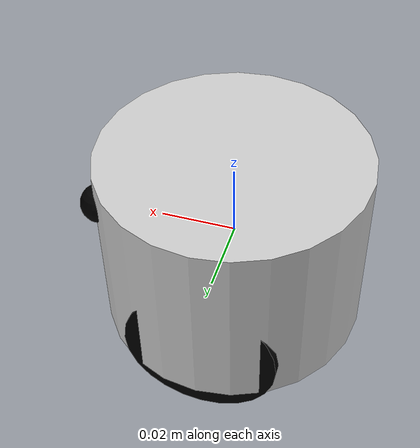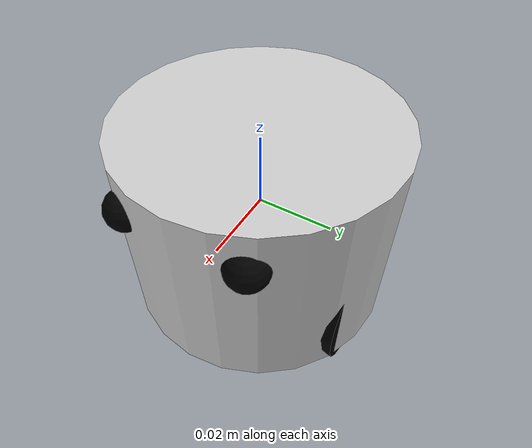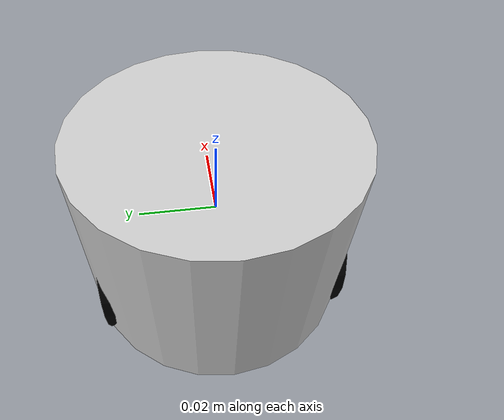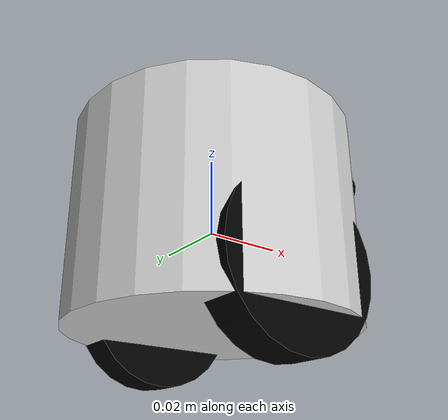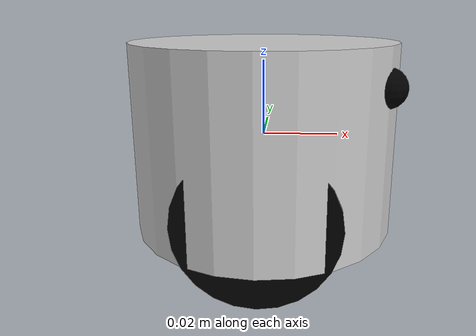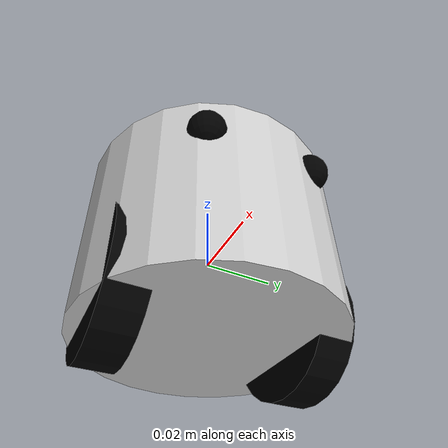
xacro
<?xml version="1.0"?>
<robot name="epuck2">

    <material name="dark_grey"><color rgba="0.2 0.2 0.2 1"/></material>
    <material name="light_grey"><color rgba="0.8 0.8 0.8 1"/></material>
    <material name="black"><color rgba="0 0 0 1"/></material>
    <material name="red"><color rgba="0.8 0.0 0 1"/></material>

    <link name="base_link">
	    <visual>
		    <geometry>
			    <cylinder length="0.05" radius="0.035"/>
		    </geometry>
		    <material name="light_grey"/>
	    </visual>
	    <collision>
		    <geometry>
			    <cylinder length="0.05" radius="0.035"/>
		    </geometry>
	    </collision>
	    <inertial>
		    <mass value="0.2"/>
		    <origin xyz="0 0 -0.035" rpy="0 0 0"/>
			<inertia ixx="0.0001" ixy="0" ixz="0" iyy="0.0001" iyz="0" izz="0.00012"/>
	    </inertial>
	    <contact>
		    <lateral_friction value="0.0"/>
	    </contact>
    </link>

  <link name="left_wheel">
    <visual>
      <origin rpy="1.5708 0 0" xyz="0 0 0"/>
      <geometry><cylinder length="0.01" radius="0.02"/></geometry>
      <material name="black"/>
    </visual>
    <collision>
      <origin rpy="1.5708 0 0" xyz="0 0 0"/>
      <geometry><cylinder length="0.01" radius="0.02"/></geometry>
    </collision>
    <inertial>
      <mass value="0.02"/>
      <inertia ixx="0.000002" ixy="0" ixz="0" iyy="0.000002" iyz="0" izz="0.000004"/>
    </inertial>
	<contact>
		<lateral_friction value="1.0"/>
	</contact>
  </link>

  <joint name="left_wheel_joint" type="continuous">
    <parent link="base_link"/>
    <child link="left_wheel"/>
    <origin xyz="0 0.026 -0.015" rpy="0 0 0"/>
    <axis xyz="0 1 0"/>
  </joint>

  <link name="right_wheel">
    <visual>
      <origin rpy="1.5708 0 0" xyz="0 0 0"/>
      <geometry><cylinder length="0.01" radius="0.02"/></geometry>
      <material name="black"/>
    </visual>
    <collision>
      <origin rpy="1.5708 0 0" xyz="0 0 0"/>
      <geometry><cylinder length="0.01" radius="0.02"/></geometry>
    </collision>
    <inertial>
      <mass value="0.02"/>
      <inertia ixx="0.000002" ixy="0" ixz="0" iyy="0.000002" iyz="0" izz="0.000004"/>
    </inertial>
	<contact>
		<lateral_friction value="1.0"/>
	</contact>
  </link>

  <joint name="right_wheel_joint" type="continuous">
    <parent link="base_link"/>
    <child link="right_wheel"/>
    <origin xyz="0 -0.026 -0.015" rpy="0 0 0"/>
    <axis xyz="0 1 0"/>
  </joint>

<!-- INVISIBLE BUMPER RING -->
<!-- Placed low and made slightly wider than the base to bump walls first. -->
<link name="bumper_ring">
	<collision>s
		<geometry>
			<!-- Slightly wider than the 0.035 base, very thin -->
			<cylinder length="0.005" radius="0.037"/>
		</geometry>
	</collision>
	<inertial>
		<mass value="0.001"/>
		<inertia ixx="0.0000001" ixy="0" ixz="0" iyy="0.0000001" iyz="0" izz="0.0000001"/>
	</inertial>
	<contact>
		<!-- Zero friction ensures it slides on walls instead of climbing -->
		<lateral_friction value="0.0"/>
	</contact>
</link>

<joint name="bumper_ring_joint" type="fixed">
	<parent link="base_link"/>
	<child link="bumper_ring"/>
	<!-- Z = -0.035 - CoM -->
	<origin xyz="0 0 -0.03" rpy="0 0 0"/>
</joint>
<!-- END INVISIBLE BUMPER RING -->

  <link name="caster_front">
    <collision>
      <geometry><sphere radius="0.005"/></geometry>
    </collision>
	<contact>
		<lateral_friction value="0.0"/>
		<rolling_friction value="0.0"/>
		<spinning_friction value="0.0"/>
	</contact>
    <inertial>
      <mass value="0.005"/>
      <inertia ixx="0.0000001" ixy="0" ixz="0" iyy="0.0000001" iyz="0" izz="0.0000001"/>
    </inertial>
  </link>

  <joint name="caster_front_joint" type="fixed">
    <parent link="base_link"/>
    <child link="caster_front"/>
    <origin xyz="0.02 0 -0.03" rpy="0 0 0"/>
  </joint>

  <link name="caster_back">
    <collision>
      <geometry><sphere radius="0.005"/></geometry>
    </collision>
	<contact>
		<lateral_friction value="0.0"/>
		<rolling_friction value="0.0"/>
		<spinning_friction value="0.0"/>
	</contact>
    <inertial>
      <mass value="0.005"/>
      <inertia ixx="0.0000001" ixy="0" ixz="0" iyy="0.0000001" iyz="0" izz="0.0000001"/>
    </inertial>
  </link>

  <joint name="caster_back_joint" type="fixed">
    <parent link="base_link"/>
    <child link="caster_back"/>
    <origin xyz="-0.02 0 -0.03" rpy="0 0 0"/>
  </joint>

	<!-- KAMERA-->
	<link name="camera_link">
		<inertial>
			<mass value="0.0"/>
			<inertia ixx="0" ixy="0" ixz="0" iyy="0" iyz="0" izz="0"/>
		</inertial>
	</link>

	<joint name="camera_joint" type="fixed">
		<parent link="base_link"/>
		<child link="camera_link"/>
		<!-- x=0.036 (przed oczami), y=0 (środek), z=0.015 (wysokość oczu) -->
		<origin xyz="0.02 0.0 0.015" rpy="0 0 0"/>
	</joint>

	<!-- OCZY -->

    <link name="eye_left">
		<inertial>
			<mass value="0.00001"/>
			<inertia ixx="0.000000001" ixy="0" ixz="0" iyy="0.000000001" iyz="0" izz="0.000000001"/>
		</inertial>
	    <visual>
		    <geometry>
			    <sphere radius="0.005"/>
		    </geometry>
		    <material name="black"/>
	    </visual>
		<contact>
			<lateral_friction value="0.0"/>
		</contact>
    </link>

    <joint name="eye_left_joint" type="fixed">
	    <parent link="base_link"/>
	    <child link="eye_left"/>
	    <origin xyz="0.03 0.015 0.015" rpy="0 0 0"/>
    </joint>

    <link name="eye_right">
		<inertial>
			<mass value="0.00001"/>
			<inertia ixx="0.000000001" ixy="0" ixz="0" iyy="0.000000001" iyz="0" izz="0.000000001"/>
		</inertial>
	    <visual>
		    <geometry>
			    <sphere radius="0.005"/>
		    </geometry>
		    <material name="black"/>
	    </visual>
		<contact>
			<lateral_friction value="0.0"/>
		</contact>
    </link>

    <joint name="eye_right_joint" type="fixed">
	    <parent link="base_link"/>
	    <child link="eye_right"/>
	    <origin xyz="0.03 -0.015 0.015" rpy="0 0 0"/>
    </joint>

</robot>
